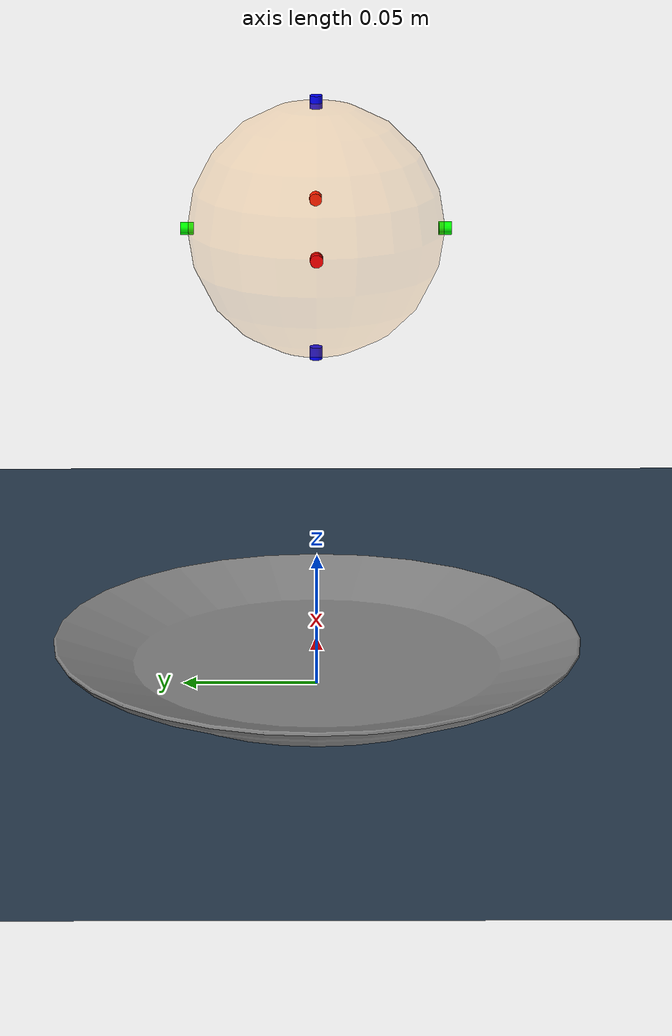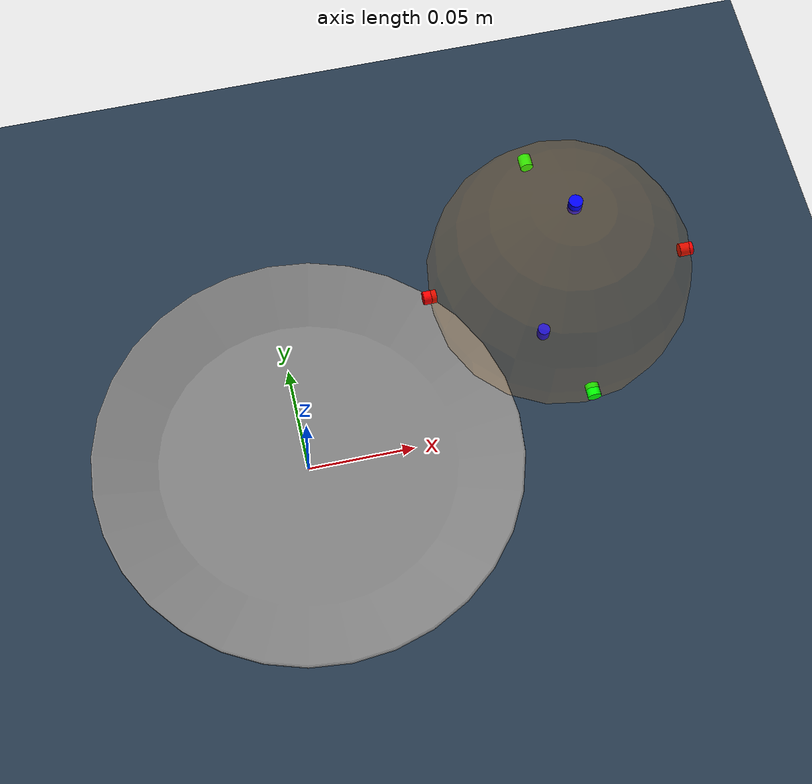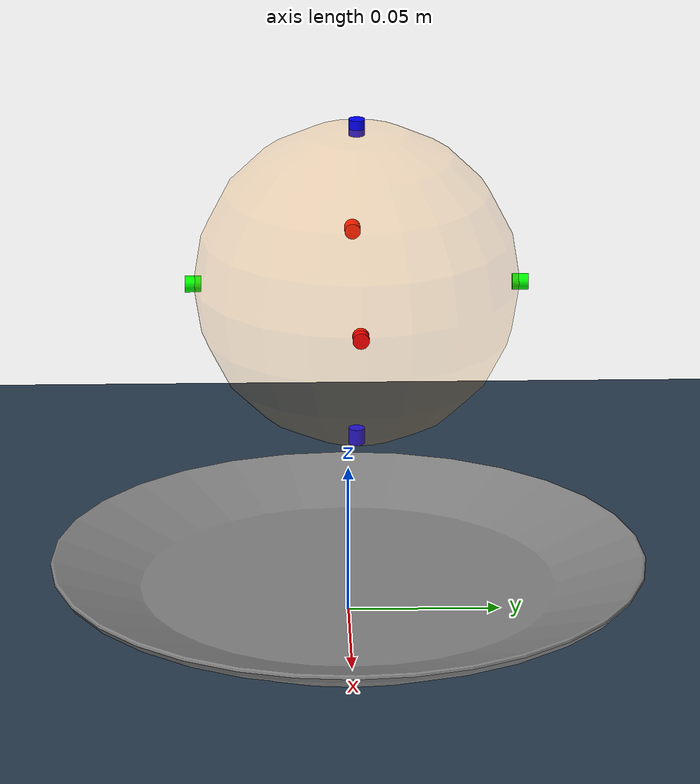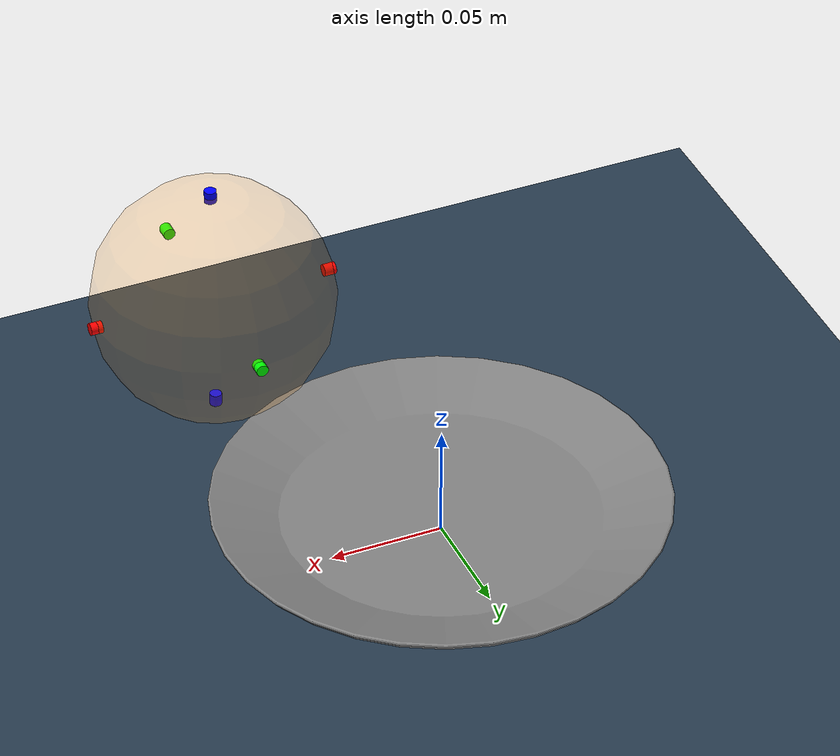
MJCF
<mujoco model="box_on_plane">
  <compiler meshdir="meshes"/>
  <statistic extent="1.5" meansize=".05"/>
  <option timestep="0.001" jacobian="sparse" gravity="0 0 -9.81"/>
  <size nconmax="3000" njmax="4000"/>
  <visual>
    <rgba haze="0.15 0.25 0.35 1"/>
    <quality shadowsize="4096"/>
    <map stiffness="700" shadowscale="0.5" fogstart="10" fogend="15" zfar="40" haze="0.3"/>
    <scale forcewidth="0.001" />
  </visual>

  <asset>
    <texture type="skybox" builtin="gradient" rgb1="0.3 0.5 0.7" rgb2="0 0 0" width="512" height="512"/>
    <texture name="texplane" type="2d" builtin="checker" rgb1=".2 .3 .4" rgb2=".1 0.15 0.2"
      width="512" height="512" mark="cross" markrgb=".8 .8 .8"/>
    <material name="matplane" reflectance="0.0" texture="texplane" texrepeat="1 1" texuniform="true"/>
    <mesh file="plate_8in_col.stl" scale="1 1 1"/>
  </asset>

  <custom>
    <!-- All custom parameters related to contact surfaces have the prefix cs:: -->
    <text name="cs::HydroelasticContactRepresentation" data="kPolygon"/>
    <numeric name="cs::VisualizeSurfaces" data="1"/>
    <numeric name="cs::ground" data="0 1.0 0.1 0.3 0.3"/>
    <numeric name="cs::plate" data="0 1.0 0 0.3 0.3"/>
    <numeric name="cs::ball" data="3e4 3.0 0.015 0.3 0.3"/>
  </custom>

  <worldbody>
    <light directional="true" diffuse=".4 .4 .4" specular="0.1 0.1 0.1" pos="0 0 5.0" dir="0 0 -1" castshadow="false"/>
    <light directional="true" diffuse=".6 .6 .6" specular="0.2 0.2 0.2" pos="0 0 4" dir="0 0 -1" castshadow="false"/>
    <geom name="ground" type="plane" size="0 0 1" pos="0 0 0" quat="1 0 0 0" material="matplane" />
    <body name="body_plate" pos="0 0.0 0" >
      <inertial pos="0 0 0.00915" mass="0.375" diaginertia="0.000860 0.000860 0.00171"/>
      <freejoint name="plate_joint"/>
      <geom name="plate" type="mesh" mesh="plate_8in_col"/>
    </body>
    <body name="body_ball" pos="0.1 0 0.15" >
      <freejoint name="ball_joint"/>
      <geom name="ball" type="sphere" size="0.05" rgba="1.0 0.55 0.0 0.2" mass="0.1"/>
      <site type="cylinder" size="0.0025" fromto="0.0525 0 0 0.0475 0 0" rgba="1 0 0 1"/>
      <site type="cylinder" size="0.0025" fromto="-0.0525 0 0 -0.0475 0 0" rgba="1 0 0 1"/>
      <site type="cylinder" size="0.0025" fromto="0 0.0525 0 0 0.0475 0" rgba="0 1 0 1"/>
      <site type="cylinder" size="0.0025" fromto="0 -0.0525 0 0 -0.0475 0" rgba="0 1 0 1"/>
      <site type="cylinder" size="0.0025" fromto="0 0 0.0525 0 0 0.0475" rgba="0 0 1 1"/>
      <site type="cylinder" size="0.0025" fromto="0 0 -0.0525 0 0 -0.0475" rgba="0 0 1 1"/>
    </body>
  </worldbody>
</mujoco>
